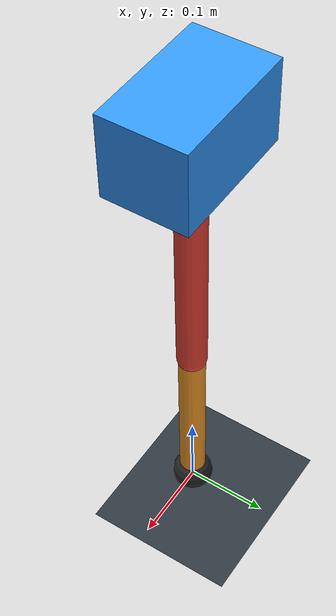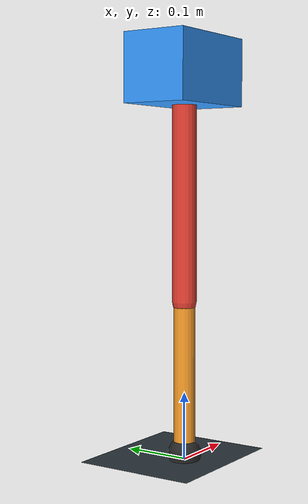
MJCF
<mujoco model="single_axis_two_bar">
  <compiler angle="radian" inertiafromgeom="true"/>
  <option timestep="0.001" integrator="implicitfast" gravity="0 0 -9.81"/>
  <default>
    <joint damping="0.08"/>
    <geom friction="1.2 0.01 0.0001" condim="3"/>
  </default>
  <worldbody>
    <geom name="floor" type="plane" size="5 5 0.1" rgba="0.18 0.22 0.25 1"/>
    <body name="carriage" pos="0 0 0.5739122167132706">
      <joint name="pole_slide" type="slide" axis="0 0 1"/>
      <geom name="payload" type="box" size="0.08 0.05 0.05" mass="2.192913393450276" rgba="0.2 0.6 1 1"/>
      <body name="thigh" pos="0 0 0">
        <joint name="hip" type="hinge" axis="0 1 0"/>
        <geom name="thigh_link" type="capsule" fromto="0 0 0 0 0 -0.3385365021560105" size="0.018" mass="0.24121173115135577" rgba="0.9 0.25 0.2 1"/>
        <body name="shank" pos="0 0 -0.3385365021560105">
          <joint name="knee" type="hinge" axis="0 1 0"/>
          <geom name="shank_link" type="capsule" fromto="0 0 0 0 0 -0.22735238105354683" size="0.016" mass="0.16199157569731237" rgba="0.95 0.6 0.15 1"/>
          <geom name="foot" type="sphere" pos="0 0 -0.22735238105354683" size="0.025" mass="0.03" rgba="0.15 0.15 0.15 1"/>
          <site name="toe" pos="0 0 -0.22735238105354683" size="0.008"/>
        </body>
      </body>
    </body>
  </worldbody>
  <actuator>
    <motor name="hip_motor" joint="hip" ctrlrange="-10.131006501760703 10.131006501760703"/>
    <motor name="knee_motor" joint="knee" ctrlrange="-53.826683449303836 53.826683449303836"/>
  </actuator>
</mujoco>
